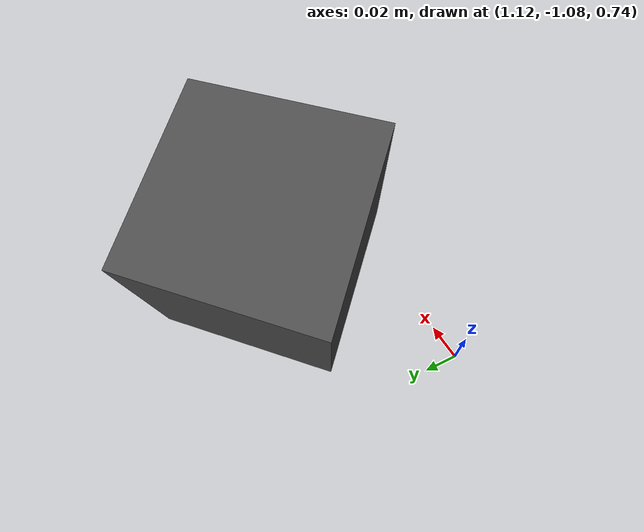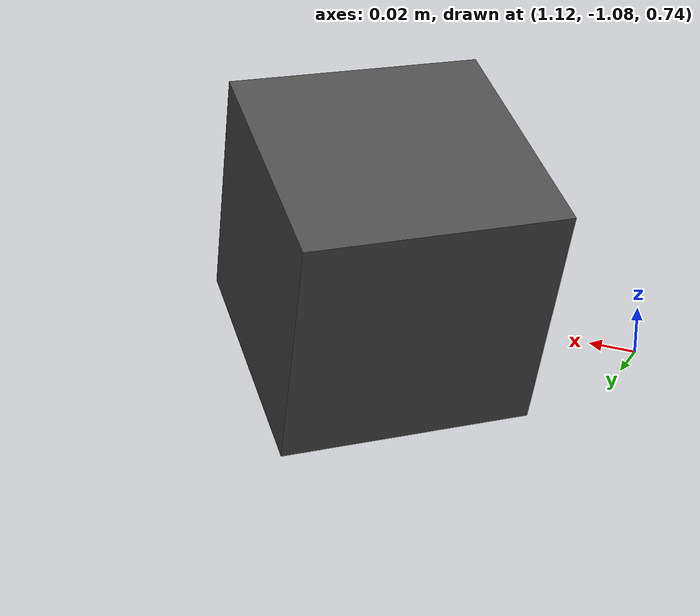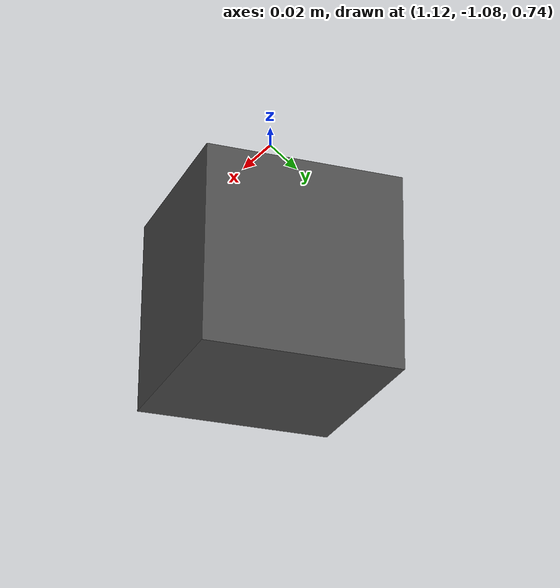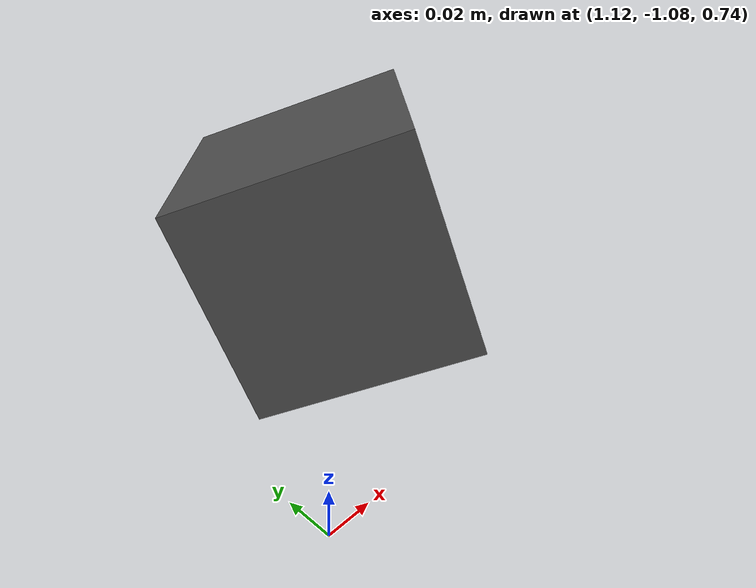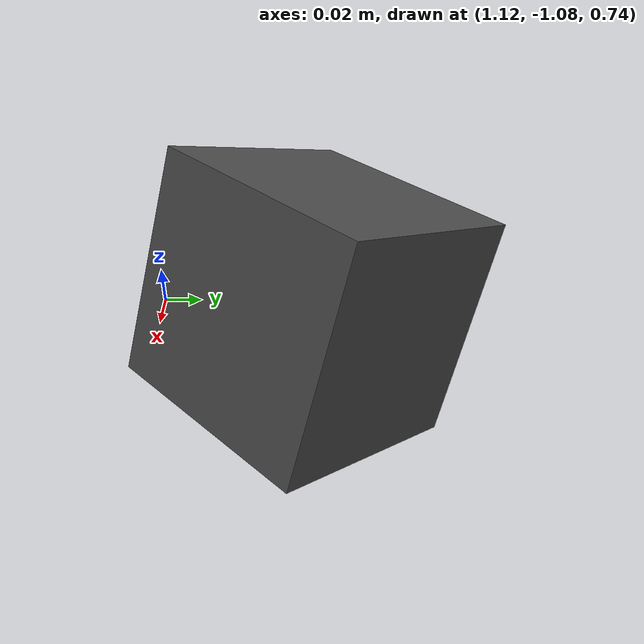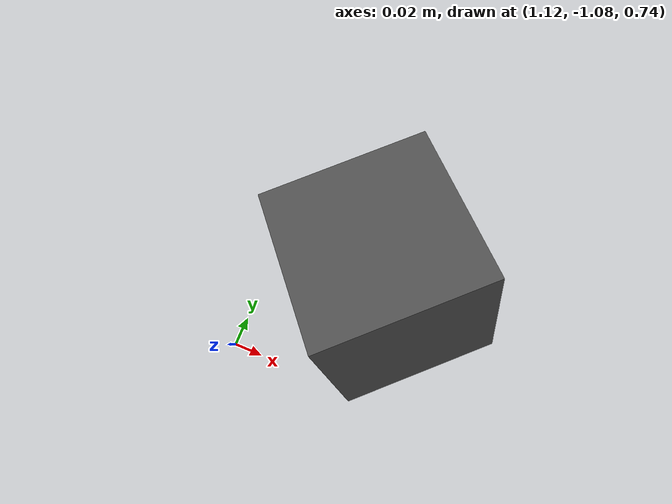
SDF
<?xml version="1.0"?>
<sdf version="1.9">
  <world name="scara_world">

    <physics name="default_physics" type="ode">
      <max_step_size>0.001</max_step_size>
      <real_time_factor>1.0</real_time_factor>
      <real_time_update_rate>1000</real_time_update_rate>
    </physics>

    <!-- Ground Plane -->
    <model name="ground_plane">
      <static>true</static>
      <link name="link">
        <collision name="collision">
          <geometry>
            <plane>
              <normal>0 0 1</normal>
              <size>20 20</size>
            </plane>
          </geometry>
        </collision>
        <visual name="visual">
          <geometry>
            <plane>
              <normal>0 0 1</normal>
              <size>20 20</size>
            </plane>
          </geometry>
          <material>
            <ambient>0.8 0.8 0.8 1</ambient>
            <diffuse>0.8 0.8 0.8 1</diffuse>
          </material>
        </visual>
      </link>
    </model>

    <!-- Directional Light -->
    <light name="sun" type="directional">
      <cast_shadows>true</cast_shadows>
      <pose>0 0 10 0 0 0</pose>
      <diffuse>0.8 0.8 0.8 1</diffuse>
      <specular>0.2 0.2 0.2 1</specular>
      <direction>-0.5 0.5 -1</direction>
    </light>

    <!-- Fixed External Digital Twin Camera -->
    <model name="external_workarea_camera">
      <static>true</static>
      <pose>1.2 -1.0 0.8 0 0.35 2.35</pose>
      <link name="link">
        <visual name="visual">
          <geometry>
            <box>
              <size>0.1 0.1 0.1</size>
            </box>
          </geometry>
          <material>
            <ambient>0.2 0.2 0.2 1</ambient>
            <diffuse>0.3 0.3 0.3 1</diffuse>
          </material>
        </visual>
        <sensor name="camera" type="camera">
          <always_on>true</always_on>
          <update_rate>30</update_rate>
          <camera name="workarea_cam">
            <horizontal_fov>1.047</horizontal_fov>
            <image>
              <width>640</width>
              <height>480</height>
              <format>R8G8B8</format>
            </image>
            <clip>
              <near>0.1</near>
              <far>100</far>
            </clip>
          </camera>
        </sensor>
      </link>
    </model>

    <!-- Default GUI Viewport Camera -->
    <gui fullscreen="0">
      <camera name="user_camera">
        <pose>1.5 -1.2 0.8 0 0.35 2.35</pose>
        <view_controller>orbit</view_controller>
      </camera>
    </gui>

  </world>
</sdf>
